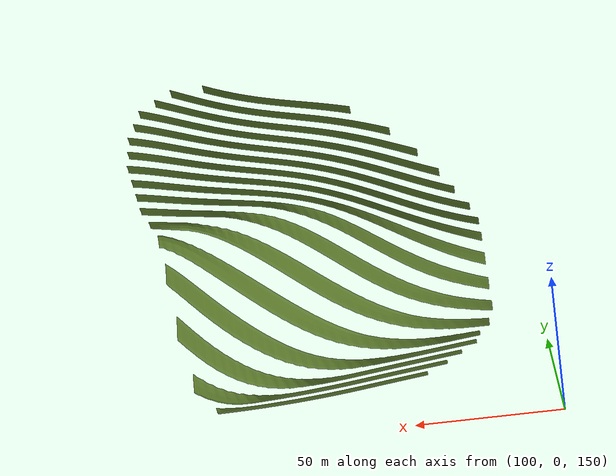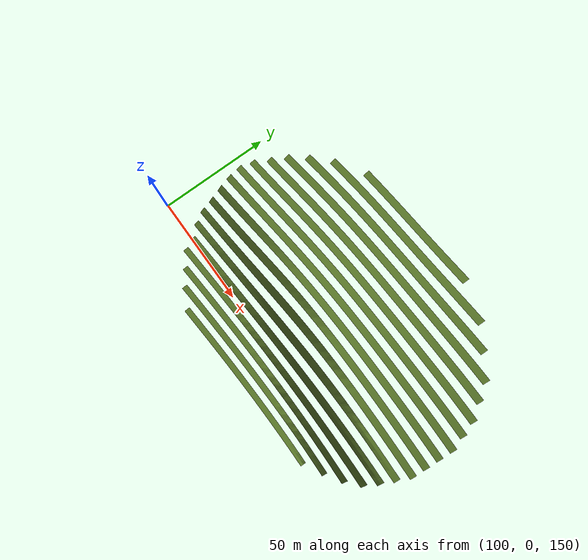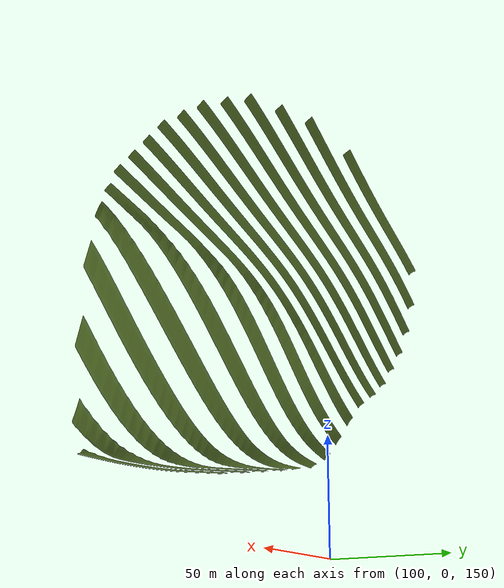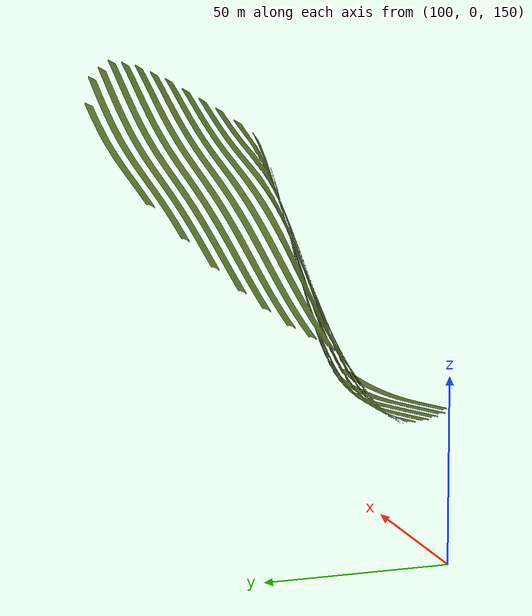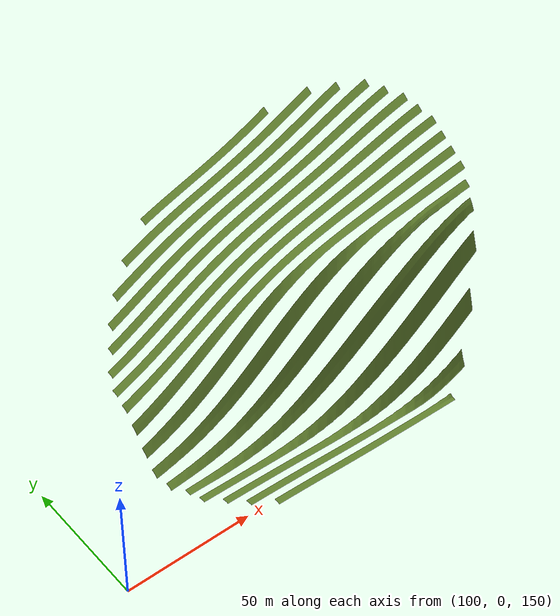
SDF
<?xml version='1.0' encoding='utf-8'?>
<sdf version="1.9">
  <model name="showcase_tea">
    <static>true</static>
    <link name="landscape">
      <visual name="tea_rows">
        <cast_shadows>true</cast_shadows>
        <geometry>
          <mesh>
            <uri>model://showcase_tea/meshes/tea_rows.dae</uri>
          </mesh>
        </geometry>
      </visual>
    </link>
  </model>
</sdf>
